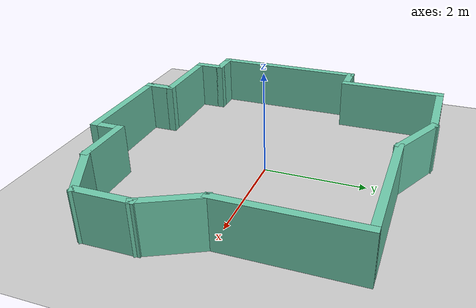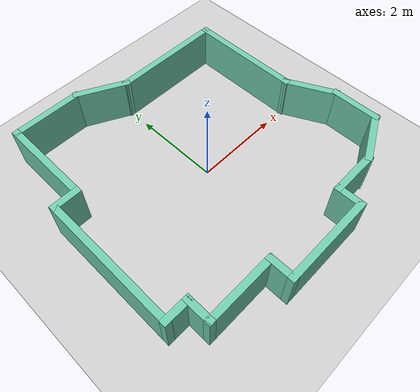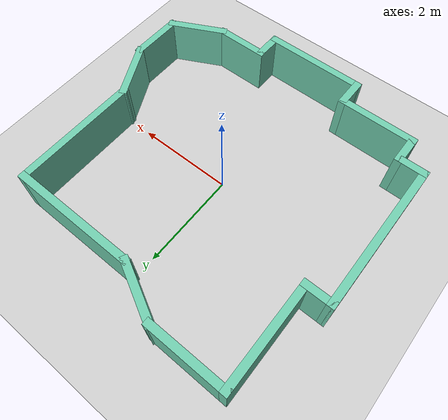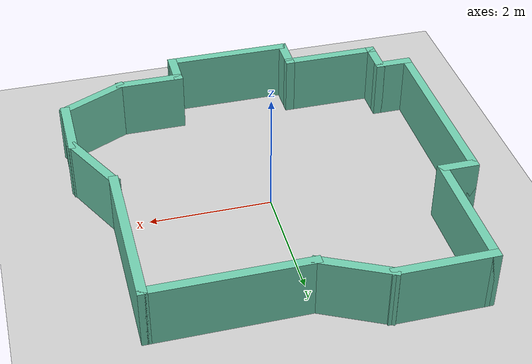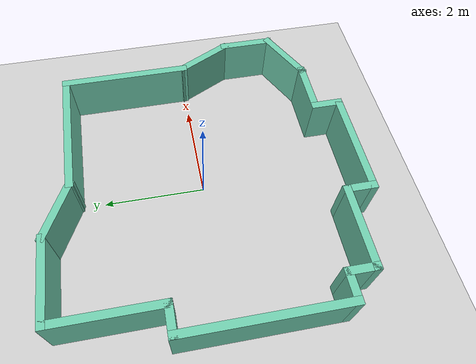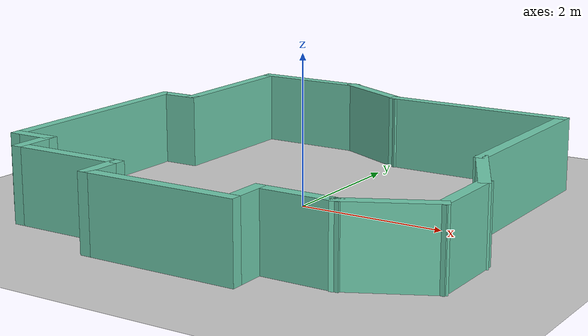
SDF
<sdf version="1.6">
 <world name="default">
  <light name="sun" type="directional">
   <pose>0 0 10 0 -0 0</pose>
   <diffuse>0.8 0.8 0.8 1</diffuse>
   <specular>0.1 0.1 0.1 1</specular>
   <attenuation>
    <range>1000</range>
    <constant>0.9</constant>
    <linear>0.01</linear>
    <quadratic>0.001</quadratic>
   </attenuation>
   <direction>-0.5 0.5 -1</direction>
  </light>
  <model name="ground_plane">
   <static>1</static>
   <link name="link">
    <collision name="collision">
     <geometry><plane><normal>0 0 1</normal><size>100 100</size></plane></geometry>
     <surface><friction><ode><mu>100</mu><mu2>50</mu2></ode></friction></surface>
    </collision>
    <visual name="visual">
     <cast_shadows>0</cast_shadows>
     <geometry><plane><normal>0 0 1</normal><size>100 100</size></plane></geometry>
     <material>
      <script><uri>file://media/materials/scripts/gazebo.material</uri><name>Gazebo/Grey</name></script>
     </material>
    </visual>
   </link>
  </model>
  <gravity>0 0 -9.8</gravity>
  <magnetic_field>6e-06 2.3e-05 -4.2e-05</magnetic_field>
  <atmosphere type="adiabatic"/>
  <physics name="default_physics" default="0" type="ode">
   <max_step_size>0.001</max_step_size>
   <real_time_factor>1</real_time_factor>
   <real_time_update_rate>1000</real_time_update_rate>
  </physics>
  <scene><ambient>0.4 0.4 0.4 1</ambient><background>0.7 0.7 0.7 1</background><shadows>1</shadows></scene>
  <spherical_coordinates>
   <surface_model>EARTH_WGS84</surface_model>
   <latitude_deg>0</latitude_deg>
   <longitude_deg>0</longitude_deg>
   <elevation>0</elevation>
   <heading_deg>0</heading_deg>
  </spherical_coordinates>
  <model name="ModelRoom6">
   <pose>0.012812 0.012812 0 0 -0 0</pose>
   <link name="Wall_0">
    <collision name="Wall_0_Collision">
     <geometry><box><size>1.65 0.15 1</size></box></geometry>
     <pose>0 0 0.5 0 -0 0</pose>
    </collision>
    <visual name="Wall_0_Visual">
     <pose>0 0 0.5 0 -0 0</pose>
     <geometry><box><size>1.65 0.15 1</size></box></geometry>
     <material>
      <script><uri>file://media/materials/scripts/gazebo.material</uri><name>Gazebo/Grey</name></script>
      <ambient>0.435294 0.796078 0.67451 1</ambient>
     </material>
    </visual>
    <pose>-1.76281 2.98719 0 0 -0 0</pose>
   </link>
   <link name="Wall_13">
    <collision name="Wall_13_Collision">
     <geometry><box><size>1.15 0.15 1</size></box></geometry>
     <pose>0 0 0.5 0 -0 0</pose>
    </collision>
    <visual name="Wall_13_Visual">
     <pose>0 0 0.5 0 -0 0</pose>
     <geometry><box><size>1.15 0.15 1</size></box></geometry>
     <material>
      <script><uri>file://media/materials/scripts/gazebo.material</uri><name>Gazebo/Grey</name></script>
      <ambient>0.435294 0.796078 0.67451 1</ambient>
     </material>
    </visual>
    <pose>2.98719 -1.51281 0 0 0 -1.5708</pose>
   </link>
   <link name="Wall_15">
    <collision name="Wall_15_Collision">
     <geometry><box><size>1.26803 0.15 1</size></box></geometry>
     <pose>0 0 0.5 0 -0 0</pose>
    </collision>
    <visual name="Wall_15_Visual">
     <pose>0 0 0.5 0 -0 0</pose>
     <geometry><box><size>1.26803 0.15 1</size></box></geometry>
     <material>
      <script><uri>file://media/materials/scripts/gazebo.material</uri><name>Gazebo/Grey</name></script>
      <ambient>0.435294 0.796078 0.67451 1</ambient>
     </material>
    </visual>
    <pose>2.48719 -2.26281 0 0 0 -2.67794</pose>
   </link>
   <link name="Wall_19">
    <collision name="Wall_19_Collision">
     <geometry><box><size>1.15 0.15 1</size></box></geometry>
     <pose>0 0 0.5 0 -0 0</pose>
    </collision>
    <visual name="Wall_19_Visual">
     <pose>0 0 0.5 0 -0 0</pose>
     <geometry><box><size>1.15 0.15 1</size></box></geometry>
     <material>
      <script><uri>file://media/materials/scripts/gazebo.material</uri><name>Gazebo/Grey</name></script>
      <ambient>0.435294 0.796078 0.67451 1</ambient>
     </material>
    </visual>
    <pose>1.48719 -2.51281 0 0 -0 3.14159</pose>
   </link>
   <link name="Wall_2">
    <collision name="Wall_2_Collision">
     <geometry><box><size>1.26803 0.15 1</size></box></geometry>
     <pose>0 0 0.5 0 -0 0</pose>
    </collision>
    <visual name="Wall_2_Visual">
     <pose>0 0 0.5 0 -0 0</pose>
     <geometry><box><size>1.26803 0.15 1</size></box></geometry>
     <material>
      <script><uri>file://media/materials/scripts/gazebo.material</uri><name>Gazebo/Grey</name></script>
      <ambient>0.435294 0.796078 0.67451 1</ambient>
     </material>
    </visual>
    <pose>-0.512812 2.73719 0 0 0 -0.463648</pose>
   </link>
   <link name="Wall_21">
    <collision name="Wall_21_Collision">
     <geometry><box><size>0.65 0.15 1</size></box></geometry>
     <pose>0 0 0.5 0 -0 0</pose>
    </collision>
    <visual name="Wall_21_Visual">
     <pose>0 0 0.5 0 -0 0</pose>
     <geometry><box><size>0.65 0.15 1</size></box></geometry>
     <material>
      <script><uri>file://media/materials/scripts/gazebo.material</uri><name>Gazebo/Grey</name></script>
      <ambient>0.435294 0.796078 0.67451 1</ambient>
     </material>
    </visual>
    <pose>0.987188 -2.76281 0 0 0 -1.5708</pose>
   </link>
   <link name="Wall_23">
    <collision name="Wall_23_Collision">
     <geometry><box><size>2.15 0.15 1</size></box></geometry>
     <pose>0 0 0.5 0 -0 0</pose>
    </collision>
    <visual name="Wall_23_Visual">
     <pose>0 0 0.5 0 -0 0</pose>
     <geometry><box><size>2.15 0.15 1</size></box></geometry>
     <material>
      <script><uri>file://media/materials/scripts/gazebo.material</uri><name>Gazebo/Grey</name></script>
      <ambient>0.435294 0.796078 0.67451 1</ambient>
     </material>
    </visual>
    <pose>-0.012812 -3.01281 0 0 -0 3.14159</pose>
   </link>
   <link name="Wall_25">
    <collision name="Wall_25_Collision">
     <geometry><box><size>0.65 0.15 1</size></box></geometry>
     <pose>0 0 0.5 0 -0 0</pose>
    </collision>
    <visual name="Wall_25_Visual">
     <pose>0 0 0.5 0 -0 0</pose>
     <geometry><box><size>0.65 0.15 1</size></box></geometry>
     <material>
      <script><uri>file://media/materials/scripts/gazebo.material</uri><name>Gazebo/Grey</name></script>
      <ambient>0.435294 0.796078 0.67451 1</ambient>
     </material>
    </visual>
    <pose>-1.01281 -2.76281 0 0 -0 1.5708</pose>
   </link>
   <link name="Wall_28">
    <collision name="Wall_28_Collision">
     <geometry><box><size>1.65 0.15 1</size></box></geometry>
     <pose>0 0 0.5 0 -0 0</pose>
    </collision>
    <visual name="Wall_28_Visual">
     <pose>0 0 0.5 0 -0 0</pose>
     <geometry><box><size>1.65 0.15 1</size></box></geometry>
     <material>
      <script><uri>file://media/materials/scripts/gazebo.material</uri><name>Gazebo/Grey</name></script>
      <ambient>0.435294 0.796078 0.67451 1</ambient>
     </material>
    </visual>
    <pose>-1.76281 -2.51281 0 0 -0 3.14159</pose>
   </link>
   <link name="Wall_30">
    <collision name="Wall_30_Collision">
     <geometry><box><size>0.65 0.15 1</size></box></geometry>
     <pose>0 0 0.5 0 -0 0</pose>
    </collision>
    <visual name="Wall_30_Visual">
     <pose>0 0 0.5 0 -0 0</pose>
     <geometry><box><size>0.65 0.15 1</size></box></geometry>
     <material>
      <script><uri>file://media/materials/scripts/gazebo.material</uri><name>Gazebo/Grey</name></script>
      <ambient>0.435294 0.796078 0.67451 1</ambient>
     </material>
    </visual>
    <pose>-2.51281 -2.26281 0 0 -0 1.5708</pose>
   </link>
   <link name="Wall_32">
    <collision name="Wall_32_Collision">
     <geometry><box><size>0.65 0.15 1</size></box></geometry>
     <pose>0 0 0.5 0 -0 0</pose>
    </collision>
    <visual name="Wall_32_Visual">
     <pose>0 0 0.5 0 -0 0</pose>
     <geometry><box><size>0.65 0.15 1</size></box></geometry>
     <material>
      <script><uri>file://media/materials/scripts/gazebo.material</uri><name>Gazebo/Grey</name></script>
      <ambient>0.435294 0.796078 0.67451 1</ambient>
     </material>
    </visual>
    <pose>-2.76281 -2.01281 0 0 -0 3.14159</pose>
   </link>
   <link name="Wall_34">
    <collision name="Wall_34_Collision">
     <geometry><box><size>3.15 0.15 1</size></box></geometry>
     <pose>0 0 0.5 0 -0 0</pose>
    </collision>
    <visual name="Wall_34_Visual">
     <pose>0 0 0.5 0 -0 0</pose>
     <geometry><box><size>3.15 0.15 1</size></box></geometry>
     <material>
      <script><uri>file://media/materials/scripts/gazebo.material</uri><name>Gazebo/Grey</name></script>
      <ambient>0.435294 0.796078 0.67451 1</ambient>
     </material>
    </visual>
    <pose>-3.01281 -0.512812 0 0 -0 1.5708</pose>
   </link>
   <link name="Wall_36">
    <collision name="Wall_36_Collision">
     <geometry><box><size>0.65 0.15 1</size></box></geometry>
     <pose>0 0 0.5 0 -0 0</pose>
    </collision>
    <visual name="Wall_36_Visual">
     <pose>0 0 0.5 0 -0 0</pose>
     <geometry><box><size>0.65 0.15 1</size></box></geometry>
     <material>
      <script><uri>file://media/materials/scripts/gazebo.material</uri><name>Gazebo/Grey</name></script>
      <ambient>0.435294 0.796078 0.67451 1</ambient>
     </material>
    </visual>
    <pose>-2.76281 0.987188 0 0 -0 0</pose>
   </link>
   <link name="Wall_38">
    <collision name="Wall_38_Collision">
     <geometry><box><size>2.15 0.15 1</size></box></geometry>
     <pose>0 0 0.5 0 -0 0</pose>
    </collision>
    <visual name="Wall_38_Visual">
     <pose>0 0 0.5 0 -0 0</pose>
     <geometry><box><size>2.15 0.15 1</size></box></geometry>
     <material>
      <script><uri>file://media/materials/scripts/gazebo.material</uri><name>Gazebo/Grey</name></script>
      <ambient>0.435294 0.796078 0.67451 1</ambient>
     </material>
    </visual>
    <pose>-2.51281 1.98719 0 0 -0 1.5708</pose>
   </link>
   <link name="Wall_4">
    <collision name="Wall_4_Collision">
     <geometry><box><size>2.65 0.15 1</size></box></geometry>
     <pose>0 0 0.5 0 -0 0</pose>
    </collision>
    <visual name="Wall_4_Visual">
     <pose>0 0 0.5 0 -0 0</pose>
     <geometry><box><size>2.65 0.15 1</size></box></geometry>
     <material>
      <script><uri>file://media/materials/scripts/gazebo.material</uri><name>Gazebo/Grey</name></script>
      <ambient>0.435294 0.796078 0.67451 1</ambient>
     </material>
    </visual>
    <pose>1.23719 2.48719 0 0 -0 0</pose>
   </link>
   <link name="Wall_6">
    <collision name="Wall_6_Collision">
     <geometry><box><size>2.65 0.15 1</size></box></geometry>
     <pose>0 0 0.5 0 -0 0</pose>
    </collision>
    <visual name="Wall_6_Visual">
     <pose>0 0 0.5 0 -0 0</pose>
     <geometry><box><size>2.65 0.15 1</size></box></geometry>
     <material>
      <script><uri>file://media/materials/scripts/gazebo.material</uri><name>Gazebo/Grey</name></script>
      <ambient>0.435294 0.796078 0.67451 1</ambient>
     </material>
    </visual>
    <pose>2.48719 1.23719 0 0 0 -1.5708</pose>
   </link>
   <link name="Wall_8">
    <collision name="Wall_8_Collision">
     <geometry><box><size>1.26803 0.15 1</size></box></geometry>
     <pose>0 0 0.5 0 -0 0</pose>
    </collision>
    <visual name="Wall_8_Visual">
     <pose>0 0 0.5 0 -0 0</pose>
     <geometry><box><size>1.26803 0.15 1</size></box></geometry>
     <material>
      <script><uri>file://media/materials/scripts/gazebo.material</uri><name>Gazebo/Grey</name></script>
      <ambient>0.435294 0.796078 0.67451 1</ambient>
     </material>
    </visual>
    <pose>2.73719 -0.512812 0 0 0 -1.10715</pose>
   </link>
   <static>1</static>
  </model>
 </world>
</sdf>
